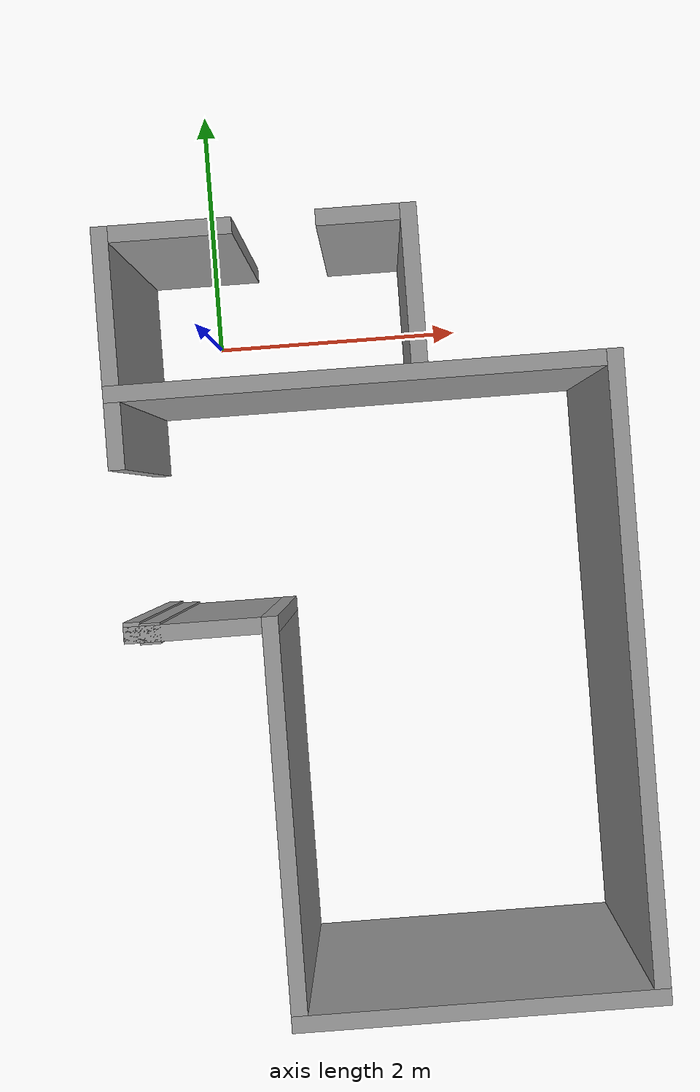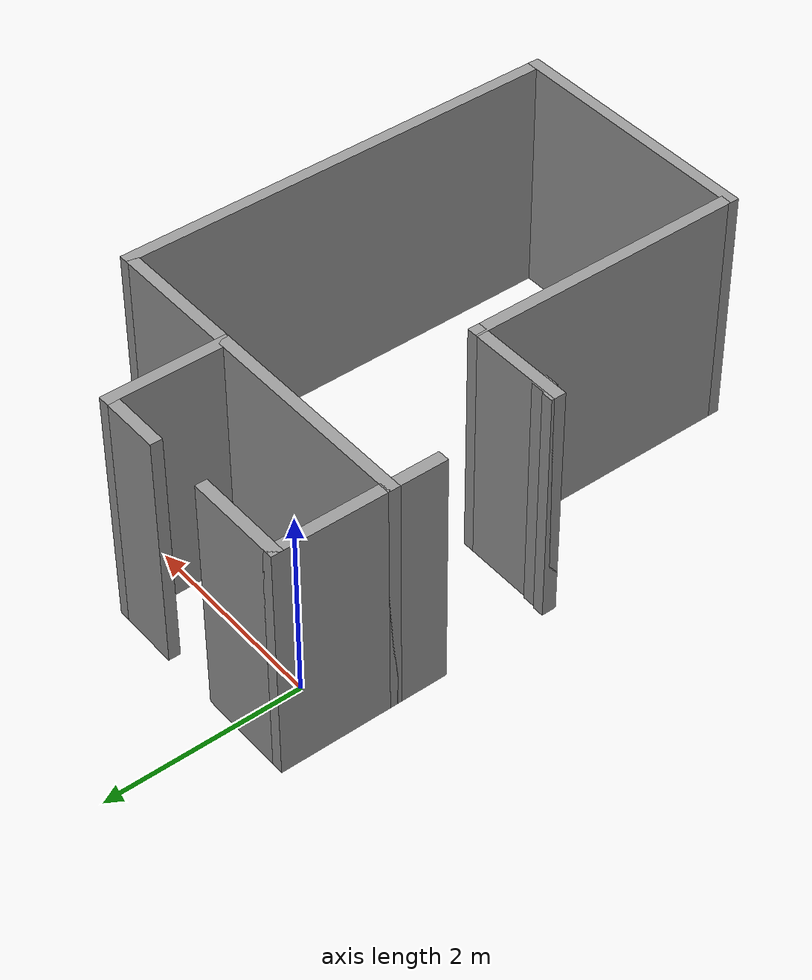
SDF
<?xml version='1.0'?>
<sdf version='1.6'>
  <model name='Untitled'>
    <pose frame=''>1.21 -2.21554 0 0 -0 0</pose>
    <link name='Wall_21'>
      <collision name='Wall_21_Collision'>
        <geometry>
          <box>
            <size>2.7 0.12 2.5</size>
          </box>
        </geometry>
        <pose frame=''>0 0 1.25 0 -0 0</pose>
      </collision>
      <visual name='Wall_21_Visual'>
        <pose frame=''>0 0 1.25 0 -0 0</pose>
        <geometry>
          <box>
            <size>2.7 0.12 2.5</size>
          </box>
        </geometry>
        <material>
          <script>
            <uri>file://media/materials/scripts/gazebo.material</uri>
            <name>Gazebo/Grey</name>
          </script>
          <ambient>1 1 1 1</ambient>
        </material>
      </visual>
      <pose frame=''>0.5 -2.84446 0 0 -0 3.14159</pose>
    </link>
    <link name='Wall_23'>
      <collision name='Wall_23_Collision'>
        <geometry>
          <box>
            <size>4.67 0.12 2.5</size>
          </box>
        </geometry>
        <pose frame=''>0 0 1.25 0 -0 0</pose>
      </collision>
      <visual name='Wall_23_Visual'>
        <pose frame=''>0 0 1.25 0 -0 0</pose>
        <geometry>
          <box>
            <size>4.67 0.12 2.5</size>
          </box>
        </geometry>
        <material>
          <script>
            <uri>file://media/materials/scripts/gazebo.material</uri>
            <name>Gazebo/Grey</name>
          </script>
          <ambient>1 1 1 1</ambient>
        </material>
      </visual>
      <pose frame=''>1.79 -0.56946 0 0 -0 1.5708</pose>
    </link>
    <link name='Wall_25'>
      <collision name='Wall_25_Collision'>
        <geometry>
          <box>
            <size>2.95816 0.12 2.5</size>
          </box>
        </geometry>
        <pose frame=''>0 0 1.25 0 -0 0</pose>
      </collision>
      <visual name='Wall_25_Visual'>
        <pose frame=''>0 0 1.25 0 -0 0</pose>
        <geometry>
          <box>
            <size>2.95816 0.12 2.5</size>
          </box>
        </geometry>
        <material>
          <script>
            <uri>file://media/materials/scripts/gazebo.material</uri>
            <name>Gazebo/Grey</name>
          </script>
          <ambient>1 1 1 1</ambient>
        </material>
      </visual>
      <pose frame=''>-0.79 -1.42546 0 0 -0 1.5708</pose>
    </link>
    <link name='Wall_27'>
      <collision name='Wall_27_Collision'>
        <geometry>
          <box>
            <size>0.15 0.15 2.5</size>
          </box>
        </geometry>
        <pose frame=''>0 0 1.25 0 -0 0</pose>
      </collision>
      <visual name='Wall_27_Visual'>
        <pose frame=''>0 0 1.25 0 -0 0</pose>
        <geometry>
          <box>
            <size>0.15 0.15 2.5</size>
          </box>
        </geometry>
        <material>
          <script>
            <uri>file://media/materials/scripts/gazebo.material</uri>
            <name>Gazebo/Grey</name>
          </script>
          <ambient>1 1 1 1</ambient>
        </material>
      </visual>
      <pose frame=''>-1.64 -0.00596 0 0 -0 0</pose>
    </link>
    <link name='Wall_35'>
      <collision name='Wall_35_Collision'>
        <geometry>
          <box>
            <size>3.7 0.12 2.5</size>
          </box>
        </geometry>
        <pose frame=''>0 0 1.25 0 -0 0</pose>
      </collision>
      <visual name='Wall_35_Visual'>
        <pose frame=''>0 0 1.25 0 -0 0</pose>
        <geometry>
          <box>
            <size>3.7 0.12 2.5</size>
          </box>
        </geometry>
        <material>
          <script>
            <uri>file://media/materials/scripts/gazebo.material</uri>
            <name>Gazebo/Grey</name>
          </script>
          <ambient>1 1 1 1</ambient>
        </material>
      </visual>
      <pose frame=''>0 1.70554 0 0 -0 3.14159</pose>
    </link>
    <link name='Wall_37'>
      <collision name='Wall_37_Collision'>
        <geometry>
          <box>
            <size>0.6 0.12 2.5</size>
          </box>
        </geometry>
        <pose frame=''>0 0 1.25 0 -0 0</pose>
      </collision>
      <visual name='Wall_37_Visual'>
        <pose frame=''>0 0 1.25 0 -0 0</pose>
        <geometry>
          <box>
            <size>0.6 0.12 2.5</size>
          </box>
        </geometry>
        <material>
          <script>
            <uri>file://media/materials/scripts/gazebo.material</uri>
            <name>Gazebo/Grey</name>
          </script>
          <ambient>1 1 1 1</ambient>
        </material>
      </visual>
      <pose frame=''>-1.79 1.46554 0 0 0 -1.5708</pose>
    </link>
    <link name='Wall_39'>
      <collision name='Wall_39_Collision'>
        <geometry>
          <box>
            <size>1.1 0.12 2.5</size>
          </box>
        </geometry>
        <pose frame=''>0 0 1.25 0 -0 0</pose>
      </collision>
      <visual name='Wall_39_Visual'>
        <pose frame=''>0 0 1.25 0 -0 0</pose>
        <geometry>
          <box>
            <size>1.1 0.12 2.5</size>
          </box>
        </geometry>
        <material>
          <script>
            <uri>file://media/materials/scripts/gazebo.material</uri>
            <name>Gazebo/Grey</name>
          </script>
          <ambient>1 1 1 1</ambient>
        </material>
      </visual>
      <pose frame=''>-1.28 -0.00646 0 0 -0 3.14159</pose>
    </link>
    <link name='Wall_42'>
      <collision name='Wall_42_Collision'>
        <geometry>
          <box>
            <size>1.25 0.12 2.5</size>
          </box>
        </geometry>
        <pose frame=''>0 0 1.25 0 -0 0</pose>
      </collision>
      <visual name='Wall_42_Visual'>
        <pose frame=''>0 0 1.25 0 -0 0</pose>
        <geometry>
          <box>
            <size>1.25 0.12 2.5</size>
          </box>
        </geometry>
        <material>
          <script>
            <uri>file://media/materials/scripts/gazebo.material</uri>
            <name>Gazebo/Grey</name>
          </script>
          <ambient>1 1 1 1</ambient>
        </material>
      </visual>
      <pose frame=''>-1.79 2.27054 0 0 -0 1.5708</pose>
    </link>
    <link name='Wall_44'>
      <collision name='Wall_44_Collision'>
        <geometry>
          <box>
            <size>1 0.12 2.5</size>
          </box>
        </geometry>
        <pose frame=''>0 0 1.25 0 -0 0</pose>
      </collision>
      <visual name='Wall_44_Visual'>
        <pose frame=''>0 0 1.25 0 -0 0</pose>
        <geometry>
          <box>
            <size>1 0.12 2.5</size>
          </box>
        </geometry>
        <material>
          <script>
            <uri>file://media/materials/scripts/gazebo.material</uri>
            <name>Gazebo/Grey</name>
          </script>
          <ambient>1 1 1 1</ambient>
        </material>
      </visual>
      <pose frame=''>-1.35 2.83554 0 0 -0 0</pose>
    </link>
    <link name='Wall_46'>
      <collision name='Wall_46_Collision'>
        <geometry>
          <box>
            <size>1.25 0.12 2.5</size>
          </box>
        </geometry>
        <pose frame=''>0 0 1.25 0 -0 0</pose>
      </collision>
      <visual name='Wall_46_Visual'>
        <pose frame=''>0 0 1.25 0 -0 0</pose>
        <geometry>
          <box>
            <size>1.25 0.12 2.5</size>
          </box>
        </geometry>
        <material>
          <script>
            <uri>file://media/materials/scripts/gazebo.material</uri>
            <name>Gazebo/Grey</name>
          </script>
          <ambient>1 1 1 1</ambient>
        </material>
      </visual>
      <pose frame=''>0.405 2.27954 0 0 -0 1.5708</pose>
    </link>
    <link name='Wall_50'>
      <collision name='Wall_50_Collision'>
        <geometry>
          <box>
            <size>0.72 0.12 2.5</size>
          </box>
        </geometry>
        <pose frame=''>0 0 1.25 0 -0 0</pose>
      </collision>
      <visual name='Wall_50_Visual'>
        <pose frame=''>0 0 1.25 0 -0 0</pose>
        <geometry>
          <box>
            <size>0.72 0.12 2.5</size>
          </box>
        </geometry>
        <material>
          <script>
            <uri>file://media/materials/scripts/gazebo.material</uri>
            <name>Gazebo/Grey</name>
          </script>
          <ambient>1 1 1 1</ambient>
        </material>
      </visual>
      <pose frame=''>0.105 2.84454 0 0 -0 3.14159</pose>
    </link>
    <link name='Wall_97'>
      <collision name='Wall_97_Collision'>
        <geometry>
          <box>
            <size>0.15 0.12 2.5</size>
          </box>
        </geometry>
        <pose frame=''>0 0 1.25 0 -0 0</pose>
      </collision>
      <visual name='Wall_97_Visual'>
        <pose frame=''>0 0 1.25 0 -0 0</pose>
        <geometry>
          <box>
            <size>0.15 0.12 2.5</size>
          </box>
        </geometry>
        <material>
          <script>
            <uri>file://media/materials/scripts/gazebo.material</uri>
            <name>Gazebo/Grey</name>
          </script>
          <ambient>1 1 1 1</ambient>
        </material>
      </visual>
      <pose frame=''>-1.77 0.00854 0 0 -0 1.5708</pose>
    </link>
    <static>1</static>
  </model>
</sdf>
